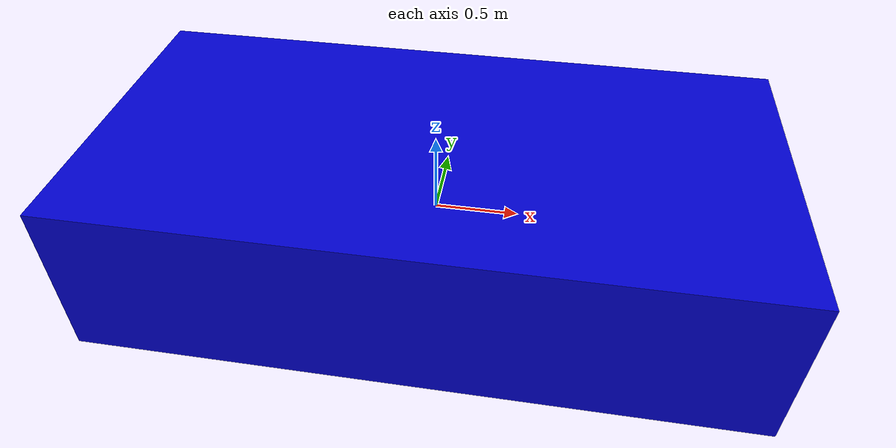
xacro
<?xml version="1.0" ?>
<robot name="voiture" xmlns:xacro="http://ros.org/wiki/xacro">

<material name="blue">
  <color rgba="0 0 0.8 1"/>
</material>
<material name="orange">
    <color rgba="${255/255} ${108/255} ${10/255} 1.0"/>
</material>

<link name="base_link">
    <visual>
      <geometry>
        <box size="4 2 1"/>
      </geometry>
      <material name ="blue"/>
      <origin rpy="0 0 0" xyz="0 0 0"/>
    </visual>
    <collision>
      <geometry>
        <box size="4 2 1"/>
      </geometry>
      <origin rpy="0 0 0" xyz="0 0 0"/>
    </collision>
</link>

<link name="camera_me">
    <visual>
      <origin rpy="0 0 0" xyz="0 0 0"/>
      <geometry>
        <box size="0.1 0.2 0.2"/>
      </geometry>
       <material name="orange"/>
    </visual>
 </link>

<joint name="camera_me}_joint" type="fixed">
    <parent link="base_link"/>
    <child link="camera_me"/>
    <origin rpy="0 0 0" xyz="0.67 0 0"/>
 </joint>

</robot>
